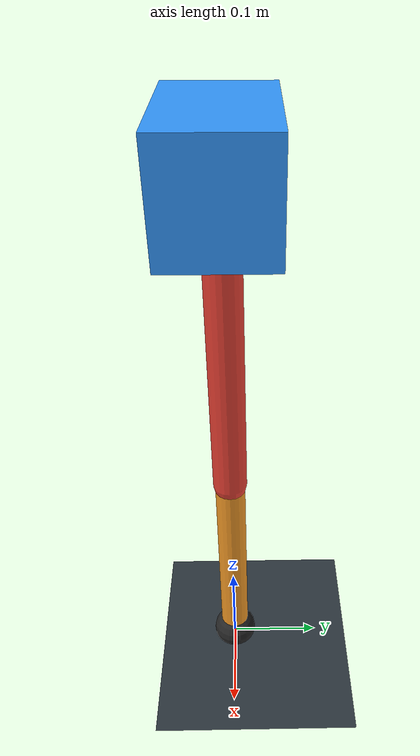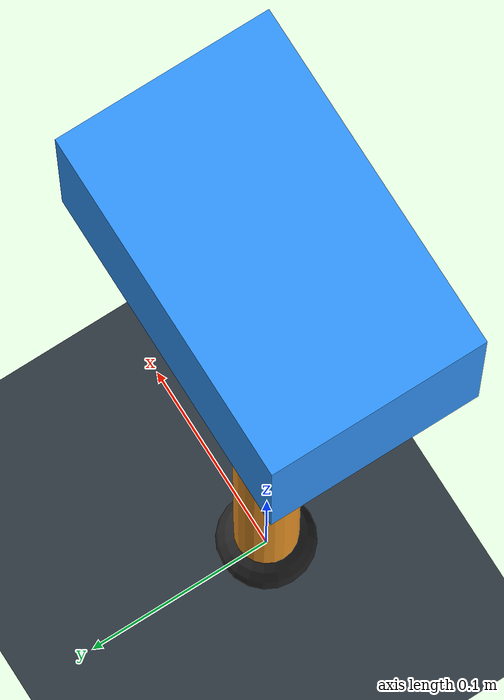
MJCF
<mujoco model="single_axis_two_bar">
  <compiler angle="radian" inertiafromgeom="true"/>
  <option timestep="0.001" integrator="implicitfast" gravity="0 0 -9.81"/>
  <default>
    <joint damping="0.08"/>
    <geom friction="1.2 0.01 0.0001" condim="3"/>
  </default>
  <worldbody>
    <geom name="floor" type="plane" size="5 5 0.1" rgba="0.18 0.22 0.25 1"/>
    <body name="carriage" pos="0 0 0.572611862324675">
      <joint name="pole_slide" type="slide" axis="0 0 1"/>
      <geom name="payload" type="box" size="0.08 0.05 0.05" mass="2.5768783095428516" rgba="0.2 0.6 1 1"/>
      <body name="thigh" pos="0 0 0">
        <joint name="hip" type="hinge" axis="0 1 0"/>
        <geom name="thigh_link" type="capsule" fromto="0 0 0 0 0 -0.32611098502529406" size="0.018" mass="0.23235838600699754" rgba="0.9 0.25 0.2 1"/>
        <body name="shank" pos="0 0 -0.32611098502529406">
          <joint name="knee" type="hinge" axis="0 1 0"/>
          <geom name="shank_link" type="capsule" fromto="0 0 0 0 0 -0.23843732664962863" size="0.016" mass="0.1698897459091535" rgba="0.95 0.6 0.15 1"/>
          <geom name="foot" type="sphere" pos="0 0 -0.23843732664962863" size="0.025" mass="0.03" rgba="0.15 0.15 0.15 1"/>
          <site name="toe" pos="0 0 -0.23843732664962863" size="0.008"/>
        </body>
      </body>
    </body>
  </worldbody>
  <actuator>
    <motor name="hip_motor" joint="hip" ctrlrange="-31.7484483846199 31.7484483846199"/>
    <motor name="knee_motor" joint="knee" ctrlrange="-103.15484150821007 103.15484150821007"/>
  </actuator>
</mujoco>
